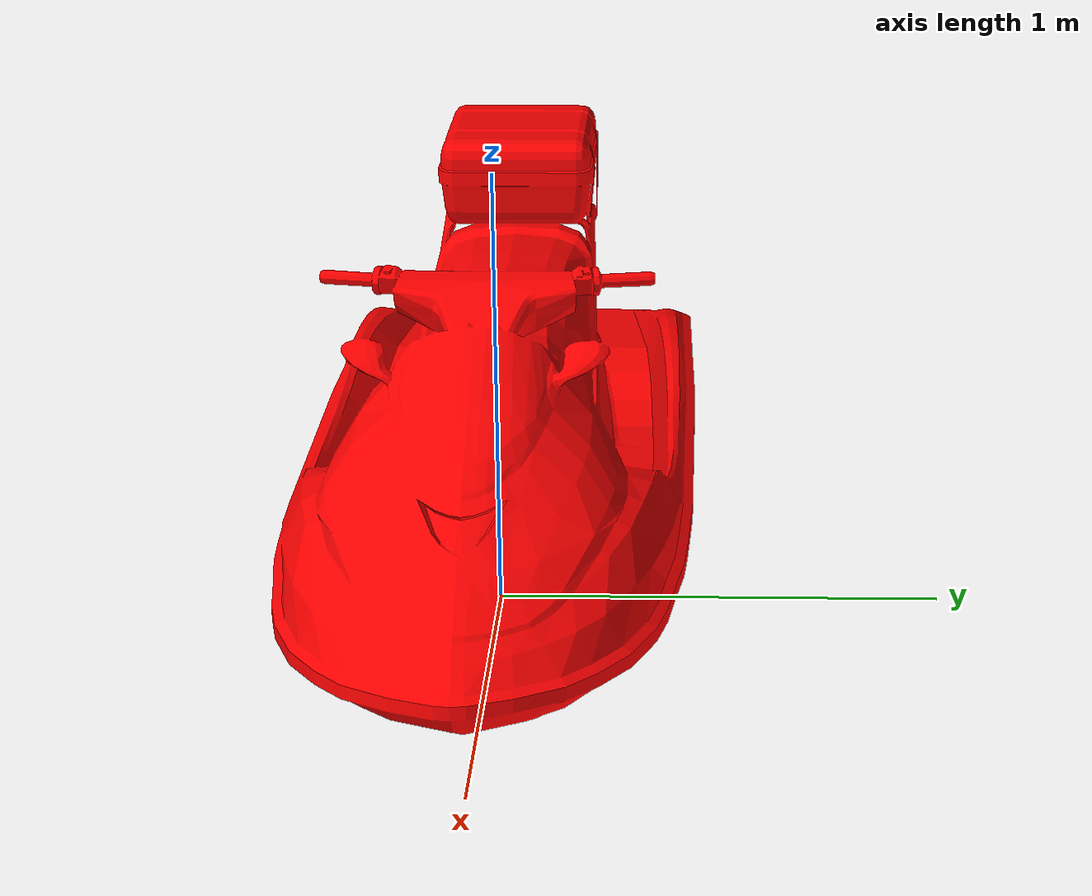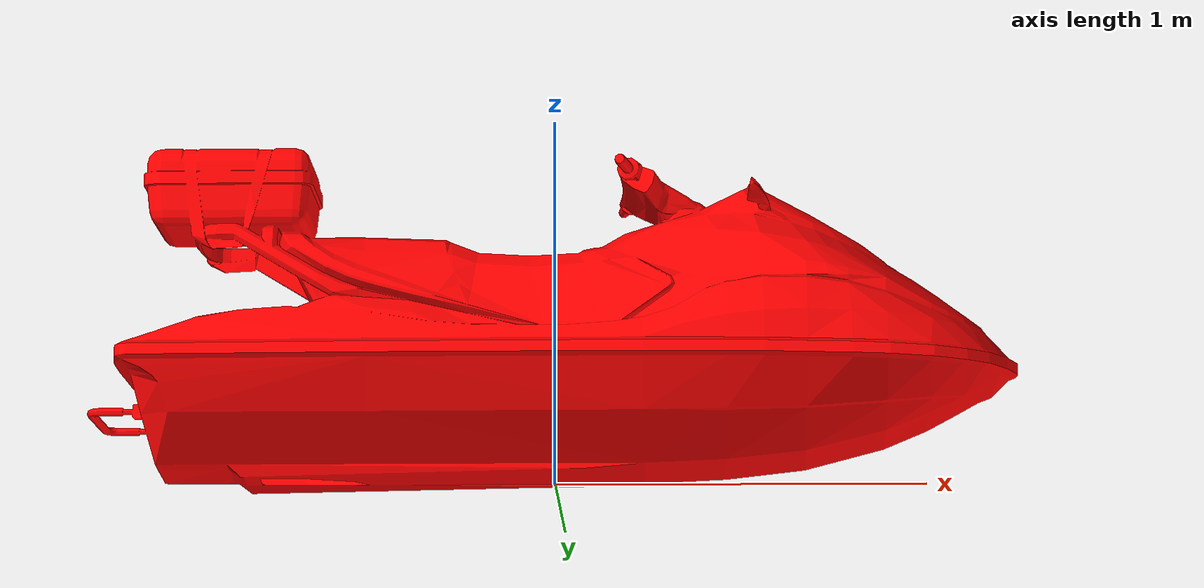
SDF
<?xml version="1.0" ?>
<sdf version='1.6'>
  <model name='boat'>
  <static>false</static>
    <link name="base_link">
      <inertial>
        <!-- subtracted wheel weights from dry weight of 350 kg -->
        <!-- http://www.polaris.com/en-us/ranger-utv/side-by-sides/ranger-ev/specifications -->
        <mass>350.0</mass>
        <inertia>
          <ixx>111</ixx>
          <ixy>0.0</ixy>
          <iyy>111</iyy>
          <ixz>0.0</ixz>
          <iyz>0.0</iyz>
          <izz>110</izz>
        </inertia>
        <!-- chassis c.o.g. near lateral/longitudinal center, height of 0.4 m -->
        <pose>0.0 0 0.3 0 -0.0 1.57</pose>
      </inertial>

      <collision name='base_link_collision'>
        <pose>0 0 0.3 0 -0.0 1.57</pose>
        <geometry>
          <mesh>
            <scale>1 1 1</scale>
            <uri>model://jet_ski/meshes/jet_ski.stl</uri>
          </mesh>
        </geometry>
      </collision>

      <visual name='base_link_visual'>
        <pose>0 0 0.45 0 -0.0 1.57</pose>
        <geometry>
          <mesh>
            <scale>1 1 1</scale>
            <uri>model://jet_ski/meshes/jet_ski.stl</uri>
          </mesh>
        </geometry>
        <material>
    		<ambient>0 0.1 0.2 1</ambient>
    		<diffuse>1 0 0 1</diffuse>
    		<specular>1 0 0 1</specular>
    		<emissive>0 0 0 0</emissive>
  	</material>
      </visual>

      </link>

     <link name='left_propeller_link'>
      <pose>0.0 0 0.3 0 1.57  0</pose>
      <inertial>
        <pose>0 0 0 0 -0 0</pose>
        <mass>0.05</mass>
        <inertia>
          <ixx>0.8545</ixx>
          <ixy>0</ixy>
          <ixz>0</ixz>
          <iyy>0.8545</iyy>
          <iyz>0</iyz>
          <izz>0.144</izz>
        </inertia>
      </inertial>

    </link>
    <joint name='left_engine_propeller_joint' type='revolute'>
      <child>left_propeller_link</child>
      <parent>right_propeller_link</parent>
      <axis>
        <xyz>1 0 0</xyz>
        <limit>
          <lower>-1e+16</lower>
          <upper>1e+16</upper>
        </limit>
        <dynamics>
          <spring_reference>0</spring_reference>
          <spring_stiffness>0</spring_stiffness>
        </dynamics>
        <use_parent_model_frame>1</use_parent_model_frame>
      </axis>
    </joint>
    <link name='right_propeller_link'>
      <pose>-0.0 0.0 0.3 0 0 0</pose>
      <inertial>
        <pose>0 0 0 0 -0 0</pose>
        <mass>0.05</mass>
        <inertia>
          <ixx>0.8545</ixx>
          <ixy>0</ixy>
          <ixz>0</ixz>
          <iyy>0.8545</iyy>
          <iyz>0</iyz>
          <izz>0.144</izz>
        </inertia>
      </inertial>

    </link>
    <link name='boat/imu_link'>
      <pose>0 0 0 0 0 0</pose>
      <inertial>
        <pose>0 0 0 0 0 0</pose>
        <mass>0.015</mass>
        <inertia>
          <ixx>1e-05</ixx>
          <ixy>0</ixy>
          <ixz>0</ixz>
          <iyy>1e-05</iyy>
          <iyz>0</iyz>
          <izz>1e-05</izz>
        </inertia>
      </inertial>
    </link>
    <joint name='rudder_joint' type='prismatic'>
      <parent>base_link</parent>
      <child>right_propeller_link</child>

      <axis>
        <xyz>0 1 0</xyz>
        <limit>
          <!-- -30/+30 deg. -->
          <lower>-0.2</lower>
          <upper>0.2</upper>
        </limit>

        <use_parent_model_frame>1</use_parent_model_frame>
      </axis>

    </joint>
    <joint name='boat/imu_joint' type='revolute'>
      <child>boat/imu_link</child>
      <parent>base_link</parent>
      <axis>
        <xyz>1 0 0</xyz>
        <limit>
          <lower>0</lower>
          <upper>0</upper>
          <effort>0</effort>
          <velocity>0</velocity>
        </limit>
        <dynamics>
          <spring_reference>0</spring_reference>
          <spring_stiffness>0</spring_stiffness>
        </dynamics>
        <use_parent_model_frame>1</use_parent_model_frame>
      </axis>
    </joint>
    <include>
      <uri>model://gps</uri>
      <pose>0 0 0.12 0 0 0</pose>
      <name>gps</name>
    </include>
    <joint name='gps_joint' type='fixed'>
      <child>gps::link</child>
      <parent>base_link</parent>
    </joint>
    <plugin name='gazebo_imu_plugin' filename='libgazebo_imu_plugin.so'>
      <robotNamespace></robotNamespace>
      <linkName>boat/imu_link</linkName>
      <imuTopic>/imu</imuTopic>
      <gyroscopeNoiseDensity>0.0003394</gyroscopeNoiseDensity>
      <gyroscopeRandomWalk>3.8785e-05</gyroscopeRandomWalk>
      <gyroscopeBiasCorrelationTime>1000.0</gyroscopeBiasCorrelationTime>
      <gyroscopeTurnOnBiasSigma>0.0087</gyroscopeTurnOnBiasSigma>
      <accelerometerNoiseDensity>0.004</accelerometerNoiseDensity>
      <accelerometerRandomWalk>0.006</accelerometerRandomWalk>
      <accelerometerBiasCorrelationTime>300.0</accelerometerBiasCorrelationTime>
      <accelerometerTurnOnBiasSigma>0.196</accelerometerTurnOnBiasSigma>
    </plugin>
    <plugin name='groundtruth_plugin' filename='libgazebo_groundtruth_plugin.so'>
      <robotNamespace/>
    </plugin>
    <plugin name='magnetometer_plugin' filename='libgazebo_magnetometer_plugin.so'>
      <robotNamespace/>
      <pubRate>100</pubRate>
      <noiseDensity>0.0004</noiseDensity>
      <randomWalk>6.4e-06</randomWalk>
      <biasCorrelationTime>600</biasCorrelationTime>
      <magTopic>/mag</magTopic>
    </plugin>
    <plugin name='barometer_plugin' filename='libgazebo_barometer_plugin.so'>
      <robotNamespace/>
      <pubRate>50</pubRate>
      <baroTopic>/baro</baroTopic>
    </plugin>
    <static>0</static>
    <plugin name='left_motor_model' filename='libgazebo_motor_model.so'>
      <robotNamespace></robotNamespace>
      <reversible>true</reversible>
      <jointName>left_engine_propeller_joint</jointName>
      <linkName>left_propeller_link</linkName>
      <turningDirection>ccw</turningDirection>
      <timeConstantUp>0.125</timeConstantUp>
      <timeConstantDown>0.25</timeConstantDown>
      <maxRotVelocity>1100</maxRotVelocity>
      <motorConstant>8.54858e-02</motorConstant>
      <momentConstant>0.01</momentConstant>
      <commandSubTopic>/gazebo/command/motor_speed</commandSubTopic>
      <motorNumber>5</motorNumber>
      <rotorDragCoefficient>0.000806428</rotorDragCoefficient>
      <rollingMomentCoefficient>1e-06</rollingMomentCoefficient>
      <motorSpeedPubTopic>/motor_speed/5</motorSpeedPubTopic>
      <rotorVelocitySlowdownSim>10</rotorVelocitySlowdownSim>
    </plugin>

    <plugin name='usv_dynamics_wamv_dynamics_plugin' filename='libgazebo_usv_dynamics_plugin.so'>
      <bodyName>base_link</bodyName>
      <waterLevel>0</waterLevel>
      <waterDensity>997.8</waterDensity>
      <xDotU>0.0</xDotU>
      <yDotV>0.0</yDotV>
      <nDotR>0.0</nDotR>
      <xU>80.0</xU>
      <xUU>0</xUU>
      <yV>120</yV>
      <yVV>0</yVV>
      <zW>300.0</zW>
      <kP>80.0</kP>
      <mQ>50.0</mQ>
      <nR>200.0</nR>
      <nRR>0.0</nRR>
      <hullRadius>0.513</hullRadius>
      <boatWidth>1.1</boatWidth>
      <boatLength>3.3</boatLength>
      <length_n>2</length_n>
      <wave_model>ocean_waves</wave_model>
    </plugin>
    <plugin name='mavlink_interface' filename='libgazebo_mavlink_interface.so'>
      <robotNamespace></robotNamespace>
      <imuSubTopic>/imu</imuSubTopic>
      <magSubTopic>/mag</magSubTopic>
      <baroSubTopic>/baro</baroSubTopic>
      <mavlink_tcp_port>4560</mavlink_tcp_port>
      <mavlink_udp_port>14560</mavlink_udp_port>
      <serialEnabled>0</serialEnabled>
      <serialDevice>/dev/ttyACM0</serialDevice>
      <baudRate>921600</baudRate>
      <qgc_addr>INADDR_ANY</qgc_addr>
      <qgc_udp_port>14550</qgc_udp_port>
      <sdk_addr>INADDR_ANY</sdk_addr>
      <sdk_udp_port>14540</sdk_udp_port>
      <hil_mode>0</hil_mode>
      <hil_state_level>0</hil_state_level>
      <enable_lockstep>true</enable_lockstep>
      <use_tcp>true</use_tcp>
      <motorSpeedCommandPubTopic>/gazebo/command/motor_speed</motorSpeedCommandPubTopic>
      <control_channels>
        <channel name="left_rotor">
          <input_index>5</input_index>
          <input_offset>0</input_offset>
          <input_scaling>13.5</input_scaling>
          <zero_position_disarmed>0</zero_position_disarmed>
          <zero_position_armed>0</zero_position_armed>
          <joint_control_type>velocity</joint_control_type>
          <joint_name>left_engine_propeller_joint</joint_name>
          <joint_control_pid>
             <p>100</p>
            <i>3</i>
            <d>10</d>
            <iMax>8</iMax>
            <iMin>-8</iMin>
            <cmdMax>1400</cmdMax>
            <cmdMin>-15</cmdMin>
          </joint_control_pid>
        </channel>
         <channel name="rudder">
          <input_index>0</input_index>
          <input_offset>0</input_offset>
          <input_scaling>0.5</input_scaling>
          <zero_position_disarmed>0</zero_position_disarmed>
          <zero_position_armed>0</zero_position_armed>
          <joint_control_type>position_kinematic</joint_control_type>
          <joint_name>rudder_joint</joint_name>
          <joint_control_pid>
             <p>1</p>
            <i>0</i>
            <d>0</d>
            <iMax>8</iMax>
            <iMin>-8</iMin>
            <cmdMax>0.00001</cmdMax>
            <cmdMin>0</cmdMin>
          </joint_control_pid>
        </channel>
      </control_channels>
    </plugin>
  </model>
</sdf>

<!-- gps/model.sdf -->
<sdf version="1.6">
  <model name="gps">
    <link name="link">
      <pose>0 0 0 0 0 0</pose>
      <inertial>
        <pose>0 0 0 0 0 0</pose>
        <mass>0.015</mass>
        <inertia>
          <ixx>1e-05</ixx>
          <ixy>0</ixy>
          <ixz>0</ixz>
          <iyy>1e-05</iyy>
          <iyz>0</iyz>
          <izz>1e-05</izz>
        </inertia>
      </inertial>
      <visual name="visual">
        <geometry>
          <cylinder>
            <radius>0.01</radius>
            <length>0.002</length>
          </cylinder>
        </geometry>
        <material>
          <script>
            <name>Gazebo/Black</name>
            <uri>file://usr/share/gz/gz-sim8/media/gazebo.material</uri>
          </script>
        </material>
      </visual>
      <sensor name="gps" type="gps">
        <pose>0 0 0 0 0 0</pose>
        <update_rate>5.0</update_rate>
        <always_on>true</always_on>
        <visualize>false</visualize>
        <!-- GpsSensor noise currently not used -->
        <plugin name="gps_plugin" filename="libgazebo_gps_plugin.so">
          <robotNamespace></robotNamespace>
          <gpsNoise>true</gpsNoise>
          <gpsXYRandomWalk>2.0</gpsXYRandomWalk>
          <gpsZRandomWalk>4.0</gpsZRandomWalk>
          <gpsXYNoiseDensity>2.0e-4</gpsXYNoiseDensity>
          <gpsZNoiseDensity>4.0e-4</gpsZNoiseDensity>
          <gpsVXYNoiseDensity>0.2</gpsVXYNoiseDensity>
          <gpsVZNoiseDensity>0.4</gpsVZNoiseDensity>
        </plugin>
      </sensor>
    </link>
  </model>
</sdf>
